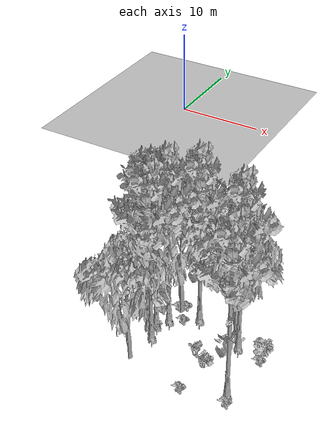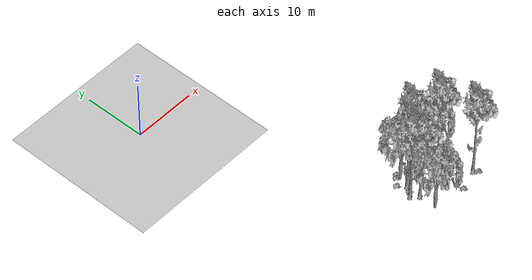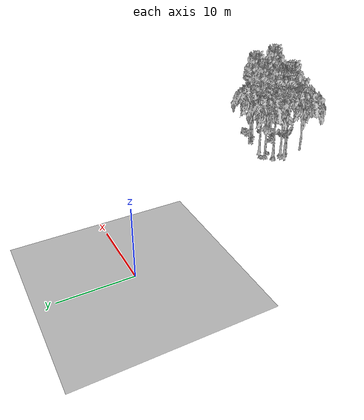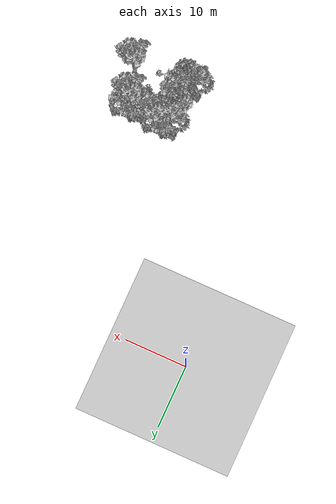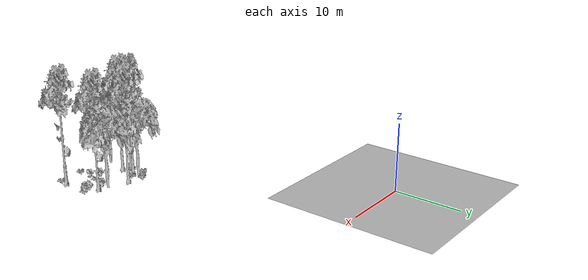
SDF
<sdf version="1.7">
 <world name="default">
  <model name="ground_plane">
   <static>1</static>
   <link name="link">
    <collision name="collision">
     <pose>-50 0 0 0 -0 0</pose>
     <geometry><plane><normal>0 0 1</normal><size>80 80</size></plane></geometry>
     <surface><contact><ode><min_depth>0.01</min_depth><max_vel>0</max_vel></ode></contact></surface>
    </collision>
    <visual name="grass">
     <cast_shadows>0</cast_shadows>
     <geometry>
      <mesh>
       <scale>0.46714285714285714 0.46714285714285714 0.1</scale>
       <uri>file://grass_plane/meshes/grass_plane.dae</uri>
      </mesh>
     </geometry>
    </visual>
   </link>
  </model>
  <model name="Tree 14">
   <static>1</static>
   <pose>16.65562580295847 -35.12207921520766 0 1.57079 -0 0</pose>
   <link name="link">
    <collision name="collision">
     <geometry><mesh><scale>3.5 5 3.5</scale><uri>model://tree_9/meshes/tree_9.obj</uri></mesh></geometry>
    </collision>
    <visual name="visual">
     <geometry><mesh><scale>3.5 5 3.5</scale><uri>model://tree_9/meshes/tree_9.obj</uri></mesh></geometry>
    </visual>
   </link>
  </model>
  <model name="Tree 92">
   <static>1</static>
   <pose>18.124401267400543 -32.10353542579493 0 1.57079 -0 0</pose>
   <link name="link">
    <collision name="collision">
     <geometry><mesh><scale>3.5 5 3.5</scale><uri>model://tree_2/meshes/tree_2.obj</uri></mesh></geometry>
    </collision>
    <visual name="visual">
     <geometry><mesh><scale>3.5 5 3.5</scale><uri>model://tree_2/meshes/tree_2.obj</uri></mesh></geometry>
    </visual>
   </link>
  </model>
  <model name="Tree 192">
   <static>1</static>
   <pose>17.828119173709432 -33.617209398832024 0 1.57079 -0 0</pose>
   <link name="link">
    <collision name="collision">
     <geometry><mesh><scale>3.5 5 3.5</scale><uri>model://tree_9/meshes/tree_9.obj</uri></mesh></geometry>
    </collision>
    <visual name="visual">
     <geometry><mesh><scale>3.5 5 3.5</scale><uri>model://tree_9/meshes/tree_9.obj</uri></mesh></geometry>
    </visual>
   </link>
  </model>
  <model name="Tree 239">
   <static>1</static>
   <pose>20.05747804237553 -32.22564993841494 0 1.57079 -0 0</pose>
   <link name="link">
    <collision name="collision">
     <geometry><mesh><scale>3.5 5 3.5</scale><uri>model://tree_9/meshes/tree_9.obj</uri></mesh></geometry>
    </collision>
    <visual name="visual">
     <geometry><mesh><scale>3.5 5 3.5</scale><uri>model://tree_9/meshes/tree_9.obj</uri></mesh></geometry>
    </visual>
   </link>
  </model>
  <model name="Tree 267">
   <static>1</static>
   <pose>23.561721933279614 -32.494153638322636 0 1.57079 -0 0</pose>
   <link name="link">
    <collision name="collision">
     <geometry><mesh><scale>3.5 5 3.5</scale><uri>model://tree_2/meshes/tree_2.obj</uri></mesh></geometry>
    </collision>
    <visual name="visual">
     <geometry><mesh><scale>3.5 5 3.5</scale><uri>model://tree_2/meshes/tree_2.obj</uri></mesh></geometry>
    </visual>
   </link>
  </model>
  <model name="Tree 287">
   <static>1</static>
   <pose>17.59815506419981 -36.11989232272756 0 1.57079 -0 0</pose>
   <link name="link">
    <collision name="collision">
     <geometry><mesh><scale>3.5 5 3.5</scale><uri>model://tree_9/meshes/tree_9.obj</uri></mesh></geometry>
    </collision>
    <visual name="visual">
     <geometry><mesh><scale>3.5 5 3.5</scale><uri>model://tree_9/meshes/tree_9.obj</uri></mesh></geometry>
    </visual>
   </link>
  </model>
  <model name="Tree 393">
   <static>1</static>
   <pose>17.212493508981332 -39.02945360591779 0 1.57079 -0 0</pose>
   <link name="link">
    <collision name="collision">
     <geometry><mesh><scale>3.5 5 3.5</scale><uri>model://tree_2/meshes/tree_2.obj</uri></mesh></geometry>
    </collision>
    <visual name="visual">
     <geometry><mesh><scale>3.5 5 3.5</scale><uri>model://tree_2/meshes/tree_2.obj</uri></mesh></geometry>
    </visual>
   </link>
  </model>
  <model name="Tree 560">
   <static>1</static>
   <pose>26.05132055064155 -38.624037485975684 0 1.57079 -0 0</pose>
   <link name="link">
    <collision name="collision">
     <geometry><mesh><scale>3.5 5 3.5</scale><uri>model://tree_9/meshes/tree_9.obj</uri></mesh></geometry>
    </collision>
    <visual name="visual">
     <geometry><mesh><scale>3.5 5 3.5</scale><uri>model://tree_9/meshes/tree_9.obj</uri></mesh></geometry>
    </visual>
   </link>
  </model>
  <model name="Tree 568">
   <static>1</static>
   <pose>24.475399545538245 -33.57312379132013 0 1.57079 -0 0</pose>
   <link name="link">
    <collision name="collision">
     <geometry><mesh><scale>3.5 5 3.5</scale><uri>model://tree_9/meshes/tree_9.obj</uri></mesh></geometry>
    </collision>
    <visual name="visual">
     <geometry><mesh><scale>3.5 5 3.5</scale><uri>model://tree_9/meshes/tree_9.obj</uri></mesh></geometry>
    </visual>
   </link>
  </model>
  <model name="Tree 574">
   <static>1</static>
   <pose>17.20897367654839 -34.691216444614746 0 1.57079 -0 0</pose>
   <link name="link">
    <collision name="collision">
     <geometry><mesh><scale>3.5 5 3.5</scale><uri>model://tree_9/meshes/tree_9.obj</uri></mesh></geometry>
    </collision>
    <visual name="visual">
     <geometry><mesh><scale>3.5 5 3.5</scale><uri>model://tree_9/meshes/tree_9.obj</uri></mesh></geometry>
    </visual>
   </link>
  </model>
  <model name="Bush 10">
   <static>1</static>
   <pose>16.642996820800533 -32.76754499133381 0 1.57079 -0 0</pose>
   <link name="link">
    <collision name="collision">
     <geometry><mesh><scale>2 2 2</scale><uri>model://bush_2/meshes/bush_2.obj</uri></mesh></geometry>
     <surface><contact><collide_without_contact>false</collide_without_contact></contact></surface>
    </collision>
    <visual name="visual">
     <geometry><mesh><scale>2 2 2</scale><uri>model://bush_2/meshes/bush_2.obj</uri></mesh></geometry>
    </visual>
   </link>
  </model>
  <model name="Bush 58">
   <static>1</static>
   <pose>22.409306503372648 -39.89022191514625 0 1.57079 -0 0</pose>
   <link name="link">
    <collision name="collision">
     <geometry><mesh><scale>2 2 2</scale><uri>model://bush_2/meshes/bush_2.obj</uri></mesh></geometry>
     <surface><contact><collide_without_contact>false</collide_without_contact></contact></surface>
    </collision>
    <visual name="visual">
     <geometry><mesh><scale>2 2 2</scale><uri>model://bush_2/meshes/bush_2.obj</uri></mesh></geometry>
    </visual>
   </link>
  </model>
  <model name="Bush 125">
   <static>1</static>
   <pose>17.071481521363104 -34.65343114247248 0 1.57079 -0 0</pose>
   <link name="link">
    <collision name="collision">
     <geometry><mesh><scale>2 2 2</scale><uri>model://bush_2/meshes/bush_2.obj</uri></mesh></geometry>
     <surface><contact><collide_without_contact>false</collide_without_contact></contact></surface>
    </collision>
    <visual name="visual">
     <geometry><mesh><scale>2 2 2</scale><uri>model://bush_2/meshes/bush_2.obj</uri></mesh></geometry>
    </visual>
   </link>
  </model>
  <model name="Bush 146">
   <static>1</static>
   <pose>26.62334681984275 -33.63340552652776 0 1.57079 -0 0</pose>
   <link name="link">
    <collision name="collision">
     <geometry><mesh><scale>2 2 2</scale><uri>model://bush_1/meshes/bush_1.obj</uri></mesh></geometry>
     <surface><contact><collide_without_contact>false</collide_without_contact></contact></surface>
    </collision>
    <visual name="visual">
     <geometry><mesh><scale>2 2 2</scale><uri>model://bush_1/meshes/bush_1.obj</uri></mesh></geometry>
    </visual>
   </link>
  </model>
  <model name="Bush 175">
   <static>1</static>
   <pose>22.988294855297852 -37.000558679874814 0 1.57079 -0 0</pose>
   <link name="link">
    <collision name="collision">
     <geometry><mesh><scale>2 2 2</scale><uri>model://bush_4/meshes/bush_4.obj</uri></mesh></geometry>
     <surface><contact><collide_without_contact>false</collide_without_contact></contact></surface>
    </collision>
    <visual name="visual">
     <geometry><mesh><scale>2 2 2</scale><uri>model://bush_4/meshes/bush_4.obj</uri></mesh></geometry>
    </visual>
   </link>
  </model>
  <model name="Bush 208">
   <static>1</static>
   <pose>21.829753154295155 -36.1297924434561 0 1.57079 -0 0</pose>
   <link name="link">
    <collision name="collision">
     <geometry><mesh><scale>2 2 2</scale><uri>model://bush_4/meshes/bush_4.obj</uri></mesh></geometry>
     <surface><contact><collide_without_contact>false</collide_without_contact></contact></surface>
    </collision>
    <visual name="visual">
     <geometry><mesh><scale>2 2 2</scale><uri>model://bush_4/meshes/bush_4.obj</uri></mesh></geometry>
    </visual>
   </link>
  </model>
  <model name="Bush 267">
   <static>1</static>
   <pose>17.733476865201226 -31.792111572826194 0 1.57079 -0 0</pose>
   <link name="link">
    <collision name="collision">
     <geometry><mesh><scale>2 2 2</scale><uri>model://bush_2/meshes/bush_2.obj</uri></mesh></geometry>
     <surface><contact><collide_without_contact>false</collide_without_contact></contact></surface>
    </collision>
    <visual name="visual">
     <geometry><mesh><scale>2 2 2</scale><uri>model://bush_2/meshes/bush_2.obj</uri></mesh></geometry>
    </visual>
   </link>
  </model>
  <model name="Bush 363">
   <static>1</static>
   <pose>18.85239881131416 -33.06248808701197 0 1.57079 -0 0</pose>
   <link name="link">
    <collision name="collision">
     <geometry><mesh><scale>2 2 2</scale><uri>model://bush_2/meshes/bush_2.obj</uri></mesh></geometry>
     <surface><contact><collide_without_contact>false</collide_without_contact></contact></surface>
    </collision>
    <visual name="visual">
     <geometry><mesh><scale>2 2 2</scale><uri>model://bush_2/meshes/bush_2.obj</uri></mesh></geometry>
    </visual>
   </link>
  </model>
  <model name="Bush 469">
   <static>1</static>
   <pose>18.212741082007234 -31.39831195352017 0 1.57079 -0 0</pose>
   <link name="link">
    <collision name="collision">
     <geometry><mesh><scale>2 2 2</scale><uri>model://bush_2/meshes/bush_2.obj</uri></mesh></geometry>
     <surface><contact><collide_without_contact>false</collide_without_contact></contact></surface>
    </collision>
    <visual name="visual">
     <geometry><mesh><scale>2 2 2</scale><uri>model://bush_2/meshes/bush_2.obj</uri></mesh></geometry>
    </visual>
   </link>
  </model>
  <model name="Bush 537">
   <static>1</static>
   <pose>26.651488105960823 -34.1586086317572 0 1.57079 -0 0</pose>
   <link name="link">
    <collision name="collision">
     <geometry><mesh><scale>2 2 2</scale><uri>model://bush_2/meshes/bush_2.obj</uri></mesh></geometry>
     <surface><contact><collide_without_contact>false</collide_without_contact></contact></surface>
    </collision>
    <visual name="visual">
     <geometry><mesh><scale>2 2 2</scale><uri>model://bush_2/meshes/bush_2.obj</uri></mesh></geometry>
    </visual>
   </link>
  </model>
  <model name="Bush 578">
   <static>1</static>
   <pose>23.97470418968816 -33.26141720945327 0 1.57079 -0 0</pose>
   <link name="link">
    <collision name="collision">
     <geometry><mesh><scale>2 2 2</scale><uri>model://bush_4/meshes/bush_4.obj</uri></mesh></geometry>
     <surface><contact><collide_without_contact>false</collide_without_contact></contact></surface>
    </collision>
    <visual name="visual">
     <geometry><mesh><scale>2 2 2</scale><uri>model://bush_4/meshes/bush_4.obj</uri></mesh></geometry>
    </visual>
   </link>
  </model>
  <model name="Bush 608">
   <static>1</static>
   <pose>26.257811370108485 -39.42796924221255 0 1.57079 -0 0</pose>
   <link name="link">
    <collision name="collision">
     <geometry><mesh><scale>2 2 2</scale><uri>model://bush_2/meshes/bush_2.obj</uri></mesh></geometry>
     <surface><contact><collide_without_contact>false</collide_without_contact></contact></surface>
    </collision>
    <visual name="visual">
     <geometry><mesh><scale>2 2 2</scale><uri>model://bush_2/meshes/bush_2.obj</uri></mesh></geometry>
    </visual>
   </link>
  </model>
  <model name="Bush 638">
   <static>1</static>
   <pose>22.856286225837152 -36.10996741514539 0 1.57079 -0 0</pose>
   <link name="link">
    <collision name="collision">
     <geometry><mesh><scale>2 2 2</scale><uri>model://bush_2/meshes/bush_2.obj</uri></mesh></geometry>
     <surface><contact><collide_without_contact>false</collide_without_contact></contact></surface>
    </collision>
    <visual name="visual">
     <geometry><mesh><scale>2 2 2</scale><uri>model://bush_2/meshes/bush_2.obj</uri></mesh></geometry>
    </visual>
   </link>
  </model>
 </world>
</sdf>
